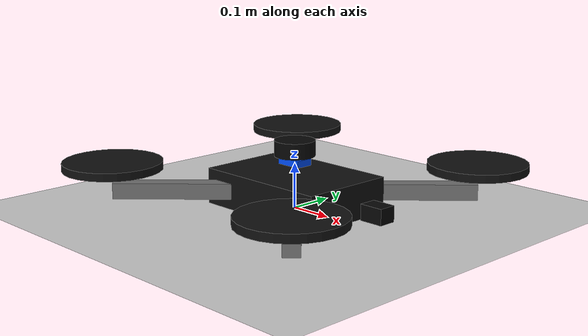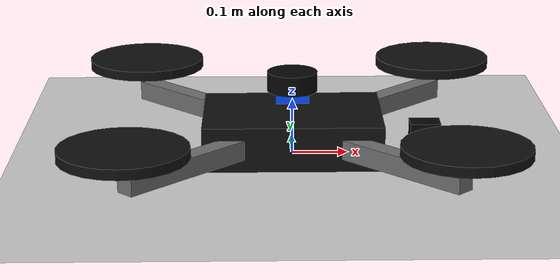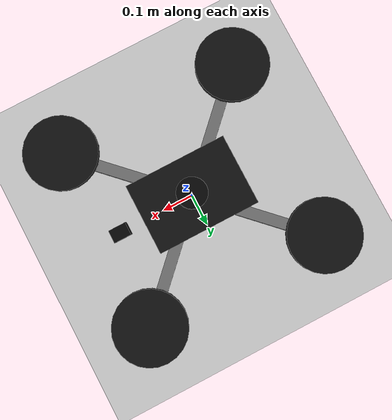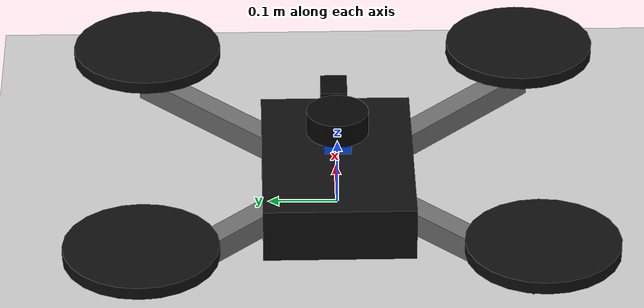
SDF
<sdf version='1.10'>
    <world name='empty'>
        <physics name='1ms' type='ignored'>
            <max_step_size>0.001</max_step_size>
            <real_time_factor>1</real_time_factor>
            <real_time_update_rate>1000</real_time_update_rate>
        </physics>
        <plugin name='gz::sim::systems::Physics' filename='gz-sim-physics-system' />
        <plugin name='gz::sim::systems::UserCommands' filename='gz-sim-user-commands-system' />
        <plugin name='gz::sim::systems::SceneBroadcaster' filename='gz-sim-scene-broadcaster-system' />
        <plugin name='gz::sim::systems::Contact' filename='gz-sim-contact-system' />
        <gravity>0 0 -9.8000000000000007</gravity>
        <magnetic_field>5.5644999999999998e-06 2.2875799999999999e-05 -4.2388400000000002e-05</magnetic_field>
        <atmosphere type='adiabatic' />
        <scene>
            <ambient>0.400000006 0.400000006 0.400000006 1</ambient>
            <background>0.699999988 0.699999988 0.699999988 1</background>
            <shadows>true</shadows>
        </scene>
        <model name='ground_plane'>
            <static>true</static>
            <link name='link'>
                <collision name='collision'>
                    <geometry>
                        <plane>
                            <normal>0 0 1</normal>
                            <size>100 100</size>
                        </plane>
                    </geometry>
                    <surface>
                        <friction>
                            <ode />
                        </friction>
                        <bounce />
                        <contact />
                    </surface>
                </collision>
                <visual name='visual'>
                    <geometry>
                        <plane>
                            <normal>0 0 1</normal>
                            <size>100 100</size>
                        </plane>
                    </geometry>
                    <material>
                        <ambient>0.800000012 0.800000012 0.800000012 1</ambient>
                        <diffuse>0.800000012 0.800000012 0.800000012 1</diffuse>
                        <specular>0.800000012 0.800000012 0.800000012 1</specular>
                    </material>
                </visual>
                <pose>0 0 0 0 0 0</pose>
                <inertial>
                    <pose>0 0 0 0 0 0</pose>
                    <mass>1</mass>
                    <inertia>
                        <ixx>1</ixx>
                        <ixy>0</ixy>
                        <ixz>0</ixz>
                        <iyy>1</iyy>
                        <iyz>0</iyz>
                        <izz>1</izz>
                    </inertia>
                </inertial>
                <enable_wind>false</enable_wind>
            </link>
            <pose>0 0 0 0 0 0</pose>
            <self_collide>false</self_collide>
        </model>
        <model name='aeroops'>
            <link name='base_link'>
                <inertial>
                    <pose>0.0065217391304347883 -9.4278449781348187e-19 0.0077989130434782559 0 0 0</pose>
                    <mass>1.840000000000001</mass>
                    <inertia>
                        <ixx>0.019523488931159419</ixx>
                        <ixy>-1.13134139737618e-20</ixy>
                        <ixz>9.3586956521739183e-05</ixz>
                        <iyy>0.03188483222826087</iyy>
                        <iyz>-1.352895754362346e-20</iyz>
                        <izz>0.048265009963768098</izz>
                    </inertia>
                </inertial>
                <collision name='base_link_collision'>
                    <pose>0 0 0 0 0 0</pose>
                    <geometry>
                        <box>
                            <size>0.32000000000000001 0.22 0.080000000000000002</size>
                        </box>
                    </geometry>
                    <surface>
                        <friction>
                            <ode />
                        </friction>
                        <bounce />
                        <contact />
                    </surface>
                </collision>
                <collision name='base_link_fixed_joint_lump__camera_link_collision_1'>
                    <pose>0.23999999999999999 0 0 0 0 0</pose>
                    <geometry>
                        <box>
                            <size>0.055 0.040000000000000001 0.035000000000000003</size>
                        </box>
                    </geometry>
                    <surface>
                        <friction>
                            <ode />
                        </friction>
                        <bounce />
                        <contact />
                    </surface>
                </collision>
                <collision name='base_link_fixed_joint_lump__front_left_arm_link_collision_2'>
                    <pose>0.14000000000000001 0.14000000000000001 0 0 0 0.78539816339744839</pose>
                    <geometry>
                        <box>
                            <size>0.39597979746446671 0.035000000000000003 0.035000000000000003</size>
                        </box>
                    </geometry>
                    <surface>
                        <friction>
                            <ode />
                        </friction>
                        <bounce />
                        <contact />
                    </surface>
                </collision>
                <collision name='base_link_fixed_joint_lump__front_left_rotor_link_collision_3'>
                    <pose>0.28000000000000003 0.28000000000000003 0.055 0 0 0</pose>
                    <geometry>
                        <cylinder>
                            <length>0.017999999999999999</length>
                            <radius>0.11</radius>
                        </cylinder>
                    </geometry>
                    <surface>
                        <friction>
                            <ode />
                        </friction>
                        <bounce />
                        <contact />
                    </surface>
                </collision>
                <collision name='base_link_fixed_joint_lump__front_right_arm_link_collision_4'>
                    <pose>0.14000000000000001 -0.14000000000000001 0 0 0 -0.78539816339744839</pose>
                    <geometry>
                        <box>
                            <size>0.39597979746446671 0.035000000000000003 0.035000000000000003</size>
                        </box>
                    </geometry>
                    <surface>
                        <friction>
                            <ode />
                        </friction>
                        <bounce />
                        <contact />
                    </surface>
                </collision>
                <collision name='base_link_fixed_joint_lump__front_right_rotor_link_collision_5'>
                    <pose>0.28000000000000003 -0.28000000000000003 0.055 0 0 0</pose>
                    <geometry>
                        <cylinder>
                            <length>0.017999999999999999</length>
                            <radius>0.11</radius>
                        </cylinder>
                    </geometry>
                    <surface>
                        <friction>
                            <ode />
                        </friction>
                        <bounce />
                        <contact />
                    </surface>
                </collision>
                <collision name='base_link_fixed_joint_lump__imu_link_collision_6'>
                    <pose>0 0 0.065000000000000002 0 0 0</pose>
                    <geometry>
                        <box>
                            <size>0.059999999999999998 0.040000000000000001 0.014999999999999999</size>
                        </box>
                    </geometry>
                    <surface>
                        <friction>
                            <ode />
                        </friction>
                        <bounce />
                        <contact />
                    </surface>
                </collision>
                <collision name='base_link_fixed_joint_lump__lidar_link_collision_7'>
                    <pose>0 0 0.095000000000000001 0 0 0</pose>
                    <geometry>
                        <cylinder>
                            <length>0.035000000000000003</length>
                            <radius>0.044999999999999998</radius>
                        </cylinder>
                    </geometry>
                    <surface>
                        <friction>
                            <ode />
                        </friction>
                        <bounce />
                        <contact />
                    </surface>
                </collision>
                <collision name='base_link_fixed_joint_lump__rear_left_arm_link_collision_8'>
                    <pose>-0.14000000000000001 0.14000000000000001 0 0 0 2.3561944901923448</pose>
                    <geometry>
                        <box>
                            <size>0.39597979746446671 0.035000000000000003 0.035000000000000003</size>
                        </box>
                    </geometry>
                    <surface>
                        <friction>
                            <ode />
                        </friction>
                        <bounce />
                        <contact />
                    </surface>
                </collision>
                <collision name='base_link_fixed_joint_lump__rear_left_rotor_link_collision_9'>
                    <pose>-0.28000000000000003 0.28000000000000003 0.055 0 0 0</pose>
                    <geometry>
                        <cylinder>
                            <length>0.017999999999999999</length>
                            <radius>0.11</radius>
                        </cylinder>
                    </geometry>
                    <surface>
                        <friction>
                            <ode />
                        </friction>
                        <bounce />
                        <contact />
                    </surface>
                </collision>
                <collision name='base_link_fixed_joint_lump__rear_right_arm_link_collision_10'>
                    <pose>-0.14000000000000001 -0.14000000000000001 0 0 0 -2.3561944901923448</pose>
                    <geometry>
                        <box>
                            <size>0.39597979746446671 0.035000000000000003 0.035000000000000003</size>
                        </box>
                    </geometry>
                    <surface>
                        <friction>
                            <ode />
                        </friction>
                        <bounce />
                        <contact />
                    </surface>
                </collision>
                <collision name='base_link_fixed_joint_lump__rear_right_rotor_link_collision_11'>
                    <pose>-0.28000000000000003 -0.28000000000000003 0.055 0 0 0</pose>
                    <geometry>
                        <cylinder>
                            <length>0.017999999999999999</length>
                            <radius>0.11</radius>
                        </cylinder>
                    </geometry>
                    <surface>
                        <friction>
                            <ode />
                        </friction>
                        <bounce />
                        <contact />
                    </surface>
                </collision>
                <visual name='base_link_visual'>
                    <pose>0 0 0 0 0 0</pose>
                    <geometry>
                        <box>
                            <size>0.32000000000000001 0.22 0.080000000000000002</size>
                        </box>
                    </geometry>
                    <material>
                        <diffuse>0.0625 0.0625 0.0625 1</diffuse>
                        <ambient>0.0625 0.0625 0.0625 1</ambient>
                    </material>
                </visual>
                <visual name='base_link_fixed_joint_lump__camera_link_visual_1'>
                    <pose>0.23999999999999999 0 0 0 0 0</pose>
                    <geometry>
                        <box>
                            <size>0.055 0.040000000000000001 0.035000000000000003</size>
                        </box>
                    </geometry>
                    <material>
                        <diffuse>0.0250000004 0.0250000004 0.0250000004 1</diffuse>
                        <ambient>0.0250000004 0.0250000004 0.0250000004 1</ambient>
                    </material>
                </visual>
                <visual name='base_link_fixed_joint_lump__front_left_arm_link_visual_2'>
                    <pose>0.14000000000000001 0.14000000000000001 0 0 0 0.78539816339744839</pose>
                    <geometry>
                        <box>
                            <size>0.39597979746446671 0.035000000000000003 0.035000000000000003</size>
                        </box>
                    </geometry>
                    <material>
                        <diffuse>0.4375 0.4375 0.4375 1</diffuse>
                        <ambient>0.4375 0.4375 0.4375 1</ambient>
                    </material>
                </visual>
                <visual name='base_link_fixed_joint_lump__front_left_rotor_link_visual_3'>
                    <pose>0.28000000000000003 0.28000000000000003 0.055 0 0 0</pose>
                    <geometry>
                        <cylinder>
                            <length>0.017999999999999999</length>
                            <radius>0.11</radius>
                        </cylinder>
                    </geometry>
                    <material>
                        <diffuse>0.0625 0.0625 0.0625 1</diffuse>
                        <ambient>0.0625 0.0625 0.0625 1</ambient>
                    </material>
                </visual>
                <visual name='base_link_fixed_joint_lump__front_right_arm_link_visual_4'>
                    <pose>0.14000000000000001 -0.14000000000000001 0 0 0 -0.78539816339744839</pose>
                    <geometry>
                        <box>
                            <size>0.39597979746446671 0.035000000000000003 0.035000000000000003</size>
                        </box>
                    </geometry>
                    <material>
                        <diffuse>0.4375 0.4375 0.4375 1</diffuse>
                        <ambient>0.4375 0.4375 0.4375 1</ambient>
                    </material>
                </visual>
                <visual name='base_link_fixed_joint_lump__front_right_rotor_link_visual_5'>
                    <pose>0.28000000000000003 -0.28000000000000003 0.055 0 0 0</pose>
                    <geometry>
                        <cylinder>
                            <length>0.017999999999999999</length>
                            <radius>0.11</radius>
                        </cylinder>
                    </geometry>
                    <material>
                        <diffuse>0.0625 0.0625 0.0625 1</diffuse>
                        <ambient>0.0625 0.0625 0.0625 1</ambient>
                    </material>
                </visual>
                <visual name='base_link_fixed_joint_lump__imu_link_visual_6'>
                    <pose>0 0 0.065000000000000002 0 0 0</pose>
                    <geometry>
                        <box>
                            <size>0.059999999999999998 0.040000000000000001 0.014999999999999999</size>
                        </box>
                    </geometry>
                    <material>
                        <diffuse>0 0.3125 1 1</diffuse>
                        <ambient>0 0.3125 1 1</ambient>
                    </material>
                </visual>
                <visual name='base_link_fixed_joint_lump__lidar_link_visual_7'>
                    <pose>0 0 0.095000000000000001 0 0 0</pose>
                    <geometry>
                        <cylinder>
                            <length>0.035000000000000003</length>
                            <radius>0.044999999999999998</radius>
                        </cylinder>
                    </geometry>
                    <material>
                        <diffuse>0.0250000004 0.0250000004 0.0250000004 1</diffuse>
                        <ambient>0.0250000004 0.0250000004 0.0250000004 1</ambient>
                    </material>
                </visual>
                <visual name='base_link_fixed_joint_lump__rear_left_arm_link_visual_8'>
                    <pose>-0.14000000000000001 0.14000000000000001 0 0 0 2.3561944901923448</pose>
                    <geometry>
                        <box>
                            <size>0.39597979746446671 0.035000000000000003 0.035000000000000003</size>
                        </box>
                    </geometry>
                    <material>
                        <diffuse>0.4375 0.4375 0.4375 1</diffuse>
                        <ambient>0.4375 0.4375 0.4375 1</ambient>
                    </material>
                </visual>
                <visual name='base_link_fixed_joint_lump__rear_left_rotor_link_visual_9'>
                    <pose>-0.28000000000000003 0.28000000000000003 0.055 0 0 0</pose>
                    <geometry>
                        <cylinder>
                            <length>0.017999999999999999</length>
                            <radius>0.11</radius>
                        </cylinder>
                    </geometry>
                    <material>
                        <diffuse>0.0625 0.0625 0.0625 1</diffuse>
                        <ambient>0.0625 0.0625 0.0625 1</ambient>
                    </material>
                </visual>
                <visual name='base_link_fixed_joint_lump__rear_right_arm_link_visual_10'>
                    <pose>-0.14000000000000001 -0.14000000000000001 0 0 0 -2.3561944901923448</pose>
                    <geometry>
                        <box>
                            <size>0.39597979746446671 0.035000000000000003 0.035000000000000003</size>
                        </box>
                    </geometry>
                    <material>
                        <diffuse>0.4375 0.4375 0.4375 1</diffuse>
                        <ambient>0.4375 0.4375 0.4375 1</ambient>
                    </material>
                </visual>
                <visual name='base_link_fixed_joint_lump__rear_right_rotor_link_visual_11'>
                    <pose>-0.28000000000000003 -0.28000000000000003 0.055 0 0 0</pose>
                    <geometry>
                        <cylinder>
                            <length>0.017999999999999999</length>
                            <radius>0.11</radius>
                        </cylinder>
                    </geometry>
                    <material>
                        <diffuse>0.0625 0.0625 0.0625 1</diffuse>
                        <ambient>0.0625 0.0625 0.0625 1</ambient>
                    </material>
                </visual>
                <pose>0 0 0 0 0 0</pose>
                <enable_wind>false</enable_wind>
            </link>
            <frame name='camera_joint' attached_to='base_link'>
                <pose>0.23999999999999999 0 0 0 0 0</pose>
            </frame>
            <frame name='camera_link' attached_to='camera_joint'>
                <pose>0 0 0 0 0 0</pose>
            </frame>
            <frame name='front_left_arm_joint' attached_to='base_link'>
                <pose>0 0 0 0 0 0</pose>
            </frame>
            <frame name='front_left_arm_link' attached_to='front_left_arm_joint'>
                <pose>0 0 0 0 0 0</pose>
            </frame>
            <frame name='front_left_rotor_joint' attached_to='base_link'>
                <pose>0.28000000000000003 0.28000000000000003 0.029999999999999999 0 0 0</pose>
            </frame>
            <frame name='front_left_rotor_link' attached_to='front_left_rotor_joint'>
                <pose>0 0 0 0 0 0</pose>
            </frame>
            <frame name='front_right_arm_joint' attached_to='base_link'>
                <pose>0 0 0 0 0 0</pose>
            </frame>
            <frame name='front_right_arm_link' attached_to='front_right_arm_joint'>
                <pose>0 0 0 0 0 0</pose>
            </frame>
            <frame name='front_right_rotor_joint' attached_to='base_link'>
                <pose>0.28000000000000003 -0.28000000000000003 0.029999999999999999 0 0 0</pose>
            </frame>
            <frame name='front_right_rotor_link' attached_to='front_right_rotor_joint'>
                <pose>0 0 0 0 0 0</pose>
            </frame>
            <frame name='imu_joint' attached_to='base_link'>
                <pose>0 0 0.065000000000000002 0 0 0</pose>
            </frame>
            <frame name='imu_link' attached_to='imu_joint'>
                <pose>0 0 0 0 0 0</pose>
            </frame>
            <frame name='lidar_joint' attached_to='base_link'>
                <pose>0 0 0.095000000000000001 0 0 0</pose>
            </frame>
            <frame name='lidar_link' attached_to='lidar_joint'>
                <pose>0 0 0 0 0 0</pose>
            </frame>
            <frame name='rear_left_arm_joint' attached_to='base_link'>
                <pose>0 0 0 0 0 0</pose>
            </frame>
            <frame name='rear_left_arm_link' attached_to='rear_left_arm_joint'>
                <pose>0 0 0 0 0 0</pose>
            </frame>
            <frame name='rear_left_rotor_joint' attached_to='base_link'>
                <pose>-0.28000000000000003 0.28000000000000003 0.029999999999999999 0 0 0</pose>
            </frame>
            <frame name='rear_left_rotor_link' attached_to='rear_left_rotor_joint'>
                <pose>0 0 0 0 0 0</pose>
            </frame>
            <frame name='rear_right_arm_joint' attached_to='base_link'>
                <pose>0 0 0 0 0 0</pose>
            </frame>
            <frame name='rear_right_arm_link' attached_to='rear_right_arm_joint'>
                <pose>0 0 0 0 0 0</pose>
            </frame>
            <frame name='rear_right_rotor_joint' attached_to='base_link'>
                <pose>-0.28000000000000003 -0.28000000000000003 0.029999999999999999 0 0 0</pose>
            </frame>
            <frame name='rear_right_rotor_link' attached_to='rear_right_rotor_joint'>
                <pose>0 0 0 0 0 0</pose>
            </frame>
            <pose>1.6791865650781831e-11 5.7672235234912303e-20 0.039999164570337899
                -8.9329377830913928e-20 4.2986776877457166e-10 1.5463864179761134e-19</pose>
            <static>false</static>
            <self_collide>false</self_collide>
        </model>
        <light name='sun' type='directional'>
            <pose>0 0 10 0 0 0</pose>
            <cast_shadows>true</cast_shadows>
            <intensity>1</intensity>
            <direction>-0.5 0.10000000000000001 -0.90000000000000002</direction>
            <diffuse>0.800000012 0.800000012 0.800000012 1</diffuse>
            <specular>0.200000003 0.200000003 0.200000003 1</specular>
            <attenuation>
                <range>1000</range>
                <linear>0.0099999997764825821</linear>
                <constant>0.89999997615814209</constant>
                <quadratic>0.0010000000474974513</quadratic>
            </attenuation>
            <spot>
                <inner_angle>0</inner_angle>
                <outer_angle>0</outer_angle>
                <falloff>0</falloff>
            </spot>
        </light>
    </world>
</sdf>
